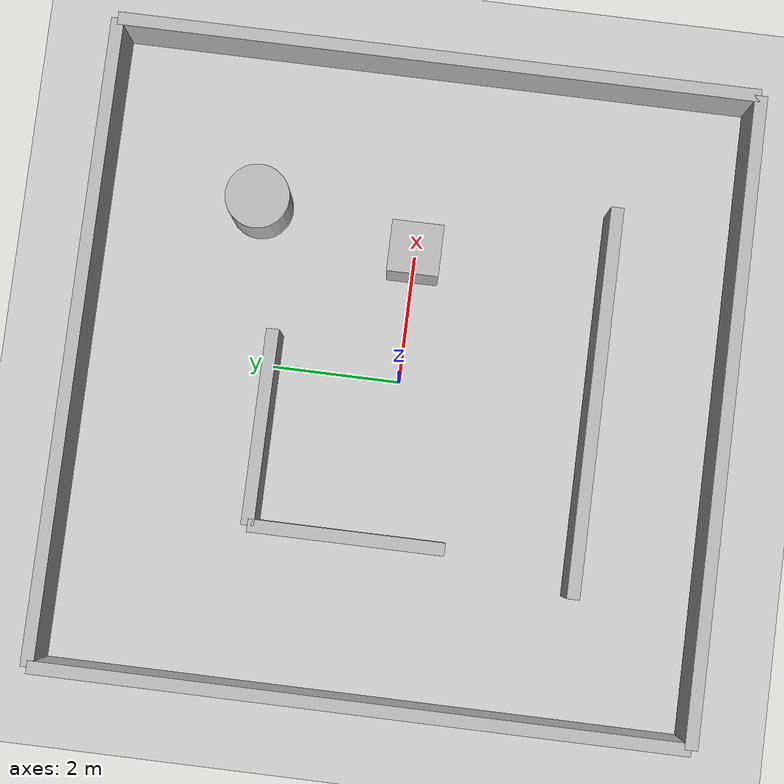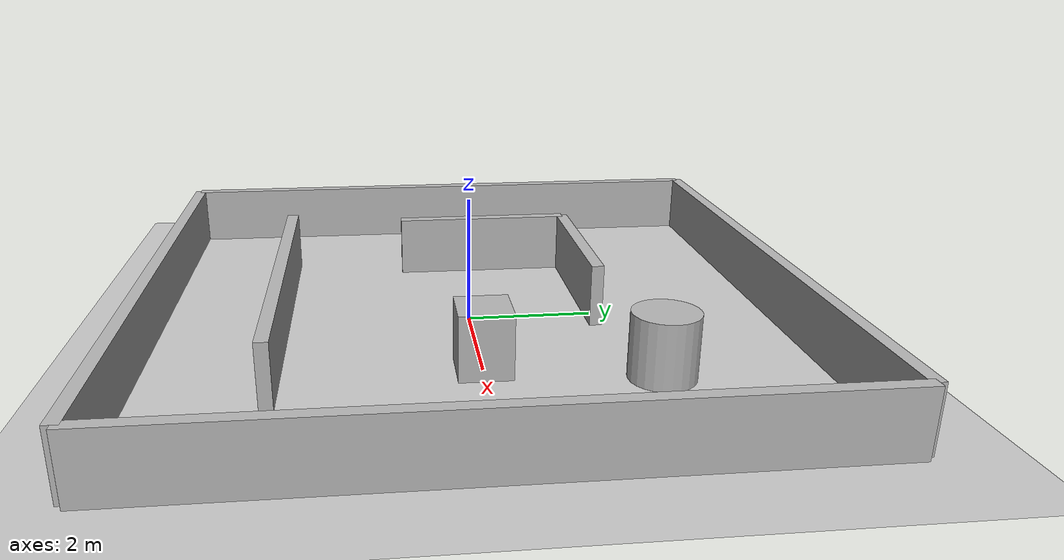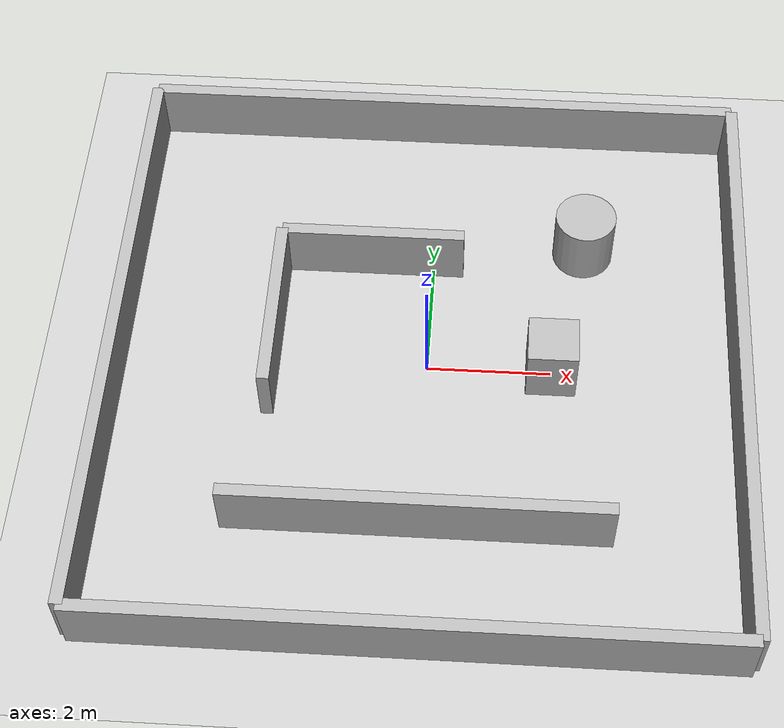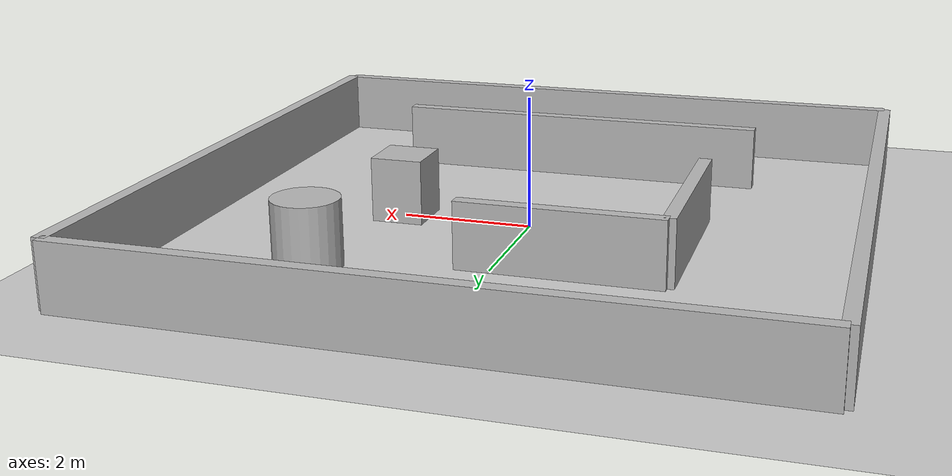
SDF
<?xml version="1.0" ?>
<sdf version="1.6">

<world name="indoor_small">

    <!-- 地面 -->
    <include>
        <uri>model://ground_plane</uri>
    </include>

    <!-- 太陽光 -->
    <include>
        <uri>model://sun</uri>
    </include>

    <!-- 外牆 -->
    <model name="wall_north">
        <static>true</static>
        <link name="link">
            <collision name="collision">
                <geometry>
                    <box><size>10 0.2 1</size></box>
                </geometry>
            </collision>
            <visual name="visual">
                <geometry>
                    <box><size>10 0.2 1</size></box>
                </geometry>
            </visual>
        </link>
        <pose>0 5 0.5 0 0 0</pose>
    </model>
    <model name="wall_south">
        <static>true</static>
        <link name="link">
            <collision name="collision">
                <geometry>
                    <box><size>10 0.2 1</size></box>
                </geometry>
            </collision>
            <visual name="visual">
                <geometry>
                    <box><size>10 0.2 1</size></box>
                </geometry>
            </visual>
        </link>
        <pose>0 -5 0.5 0 0 0</pose>
    </model>
    <model name="wall_east">
        <static>true</static>
        <link name="link">
            <collision name="collision">
                <geometry>
                    <box><size>0.2 10 1</size></box>
                </geometry>
            </collision>
            <visual name="visual">
                <geometry>
                    <box><size>0.2 10 1</size></box>
                </geometry>
            </visual>
        </link>
        <pose>5 0 0.5 0 0 0</pose>
    </model>
    <model name="wall_west">
        <static>true</static>
        <link name="link">
            <collision name="collision">
                <geometry>
                    <box><size>0.2 10 1</size></box>
                </geometry>
            </collision>
            <visual name="visual">
                <geometry>
                    <box><size>0.2 10 1</size></box>
                </geometry>
            </visual>
        </link>
        <pose>-5 0 0.5 0 0 0</pose>
    </model>

    <!-- 障礙物 -->
    <model name="box_right">
        <static>true</static>
        <link name="link">
            <collision name="collision">
                <geometry>
                    <box><size>0.8 0.8 1</size></box>
                </geometry>
            </collision>
            <visual name="visual">
                <geometry>
                    <box><size>0.8 0.8 1</size></box>
                </geometry>
            </visual>
        </link>
        <pose>2 0 0.5 0 0 0</pose>
    </model>

    <!-- L 型牆（很重要，SLAM 經典測試） -->
    <model name="L_wall_1">
        <static>true</static>
        <link name="link">
            <collision name="collision">
                <geometry>
                    <box><size>3 0.2 1</size></box>
                </geometry>
            </collision>
            <visual name="visual">
                <geometry>
                    <box><size>3 0.2 1</size></box>
                </geometry>
            </visual>
        </link>
        <pose>-1 2 0.5 0 0 0</pose>
    </model>

    <model name="L_wall_2">
        <static>true</static>
        <link name="link">
            <collision name="collision">
                <geometry>
                    <box><size>0.2 3 1</size></box>
                </geometry>
            </collision>
            <visual name="visual">
                <geometry>
                    <box><size>0.2 3 1</size></box>
                </geometry>
            </visual>
        </link>
        <pose>-2.5 0.5 0.5 0 0 0</pose>
    </model>

    <!-- 長走廊牆 -->
    <model name="corridor_wall">
        <static>true</static>
        <link name="link">
            <collision name="collision">
                <geometry>
                    <box><size>6 0.2 1</size></box>
                </geometry>
            </collision>
            <visual name="visual">
                <geometry>
                    <box><size>6 0.2 1</size></box>
                </geometry>
            </visual>
        </link>
        <pose>0 -3 0.5 0 0 0</pose>
    </model>

    <!-- 柱子 -->
    <model name="cylinder_obstacle">
    <static>true</static>
    <link name="link">
        <collision name="collision">
            <geometry>
                <cylinder>
                    <radius>0.5</radius>
                    <length>1.0</length>
                </cylinder>
            </geometry>
        </collision>
        <visual name="visual">
            <geometry>
                <cylinder>
                    <radius>0.5</radius>
                    <length>1.0</length>
                </cylinder>
            </geometry>
        </visual>
    </link>
    <pose>2.5 2.5 0.5 0 0 0</pose>
</model>

</world>

</sdf>
